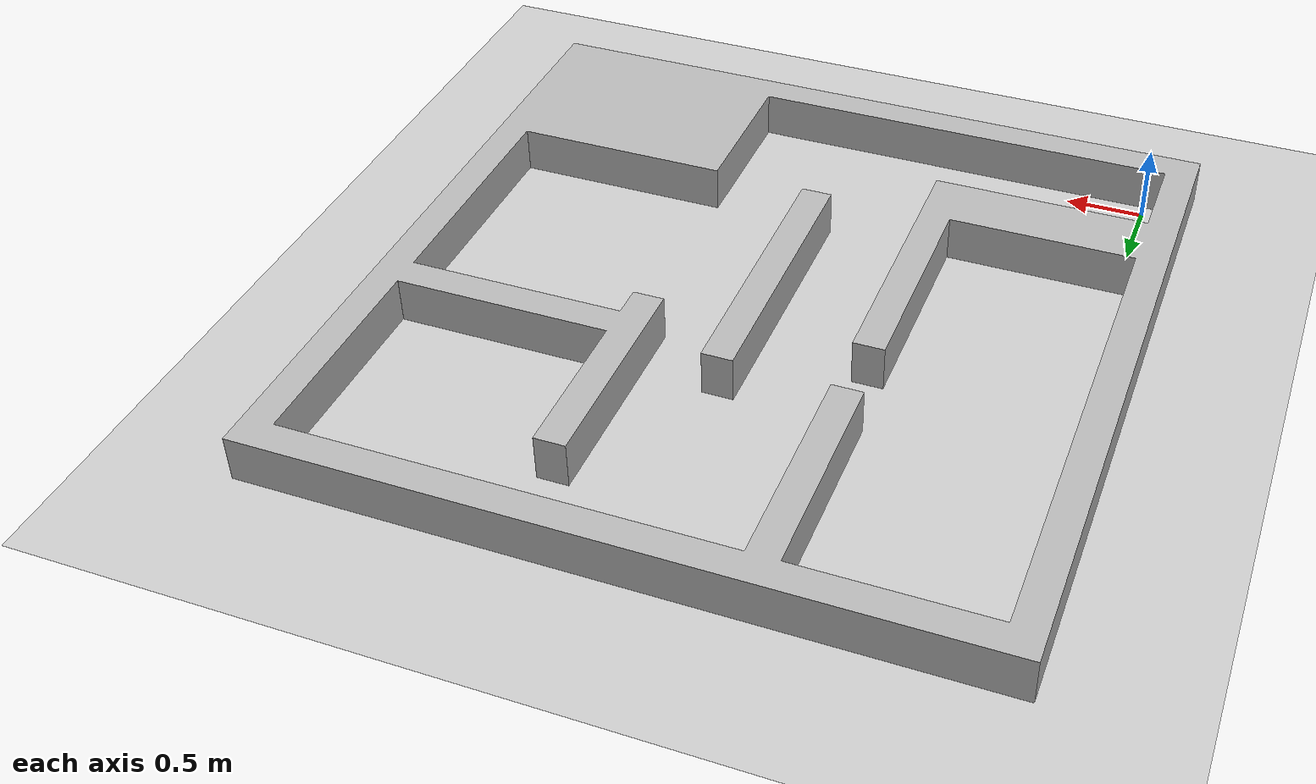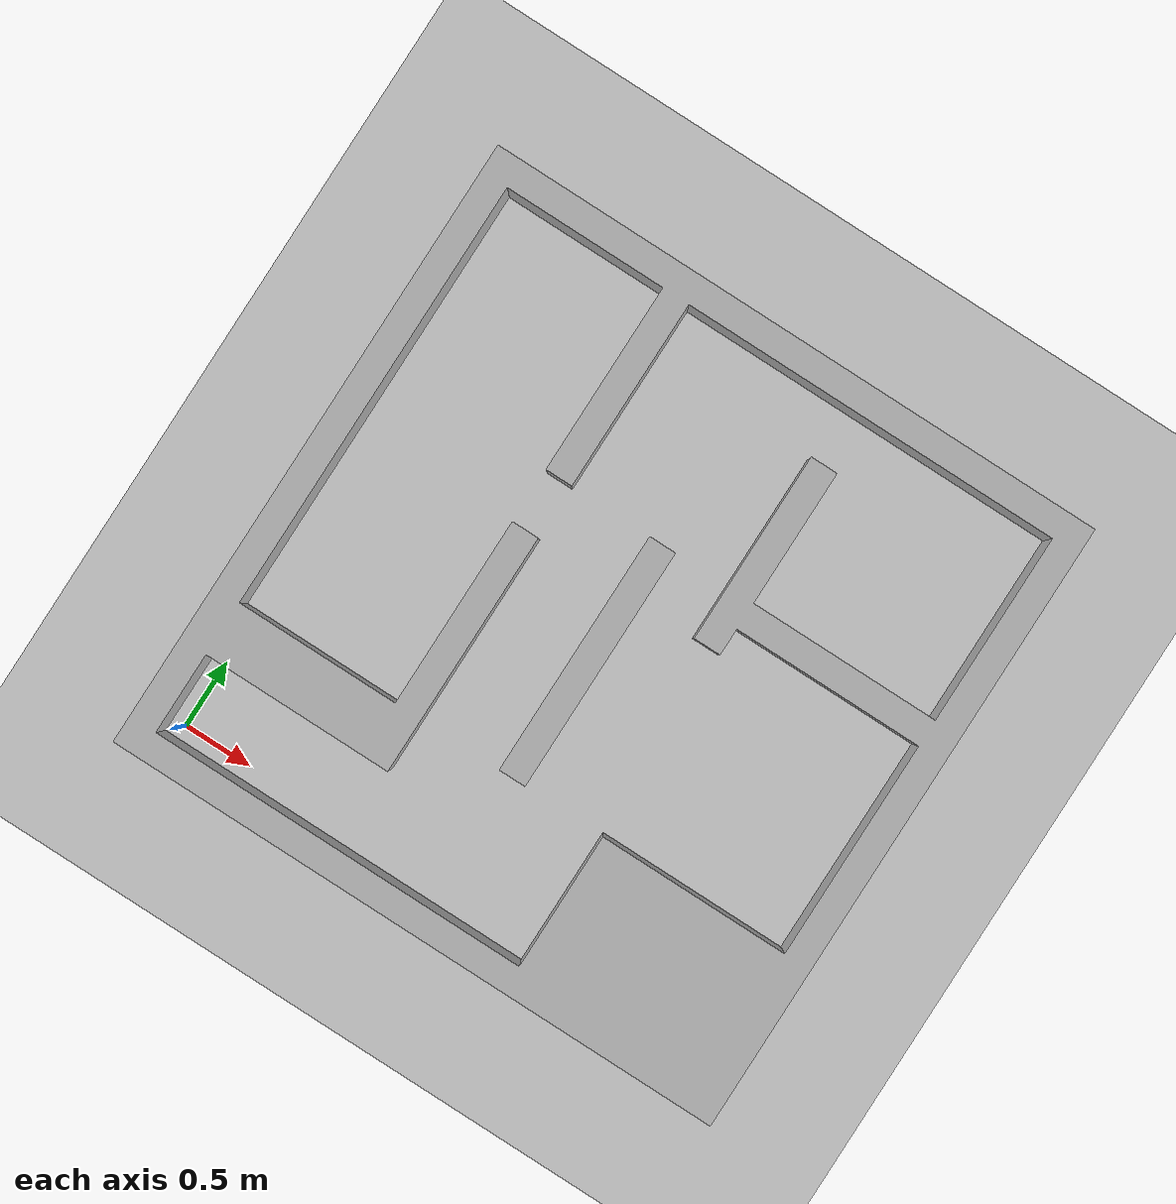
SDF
<sdf version="1.6">
 <world name="default">
  <light name="sun" type="directional">
   <pose>0 0 10 0 -0 0</pose>
   <diffuse>0.8 0.8 0.8 1</diffuse>
   <specular>0.2 0.2 0.2 1</specular>
   <attenuation>
    <range>1000</range>
    <constant>0.9</constant>
    <linear>0.01</linear>
    <quadratic>0.001</quadratic>
   </attenuation>
   <direction>-0.5 0.1 -0.9</direction>
  </light>
  <model name="ground_plane">
   <static>1</static>
   <link name="link">
    <collision name="collision">
     <geometry><plane><normal>0 0 1</normal><size>100 100</size></plane></geometry>
     <surface>
      <contact><collide_bitmask>65535</collide_bitmask></contact>
      <friction><ode><mu>100</mu><mu2>50</mu2></ode></friction>
     </surface>
    </collision>
    <visual name="visual">
     <cast_shadows>0</cast_shadows>
     <geometry><plane><normal>0 0 1</normal><size>100 100</size></plane></geometry>
     <material>
      <script><uri>file://media/materials/scripts/gazebo.material</uri><name>Gazebo/Grey</name></script>
     </material>
    </visual>
   </link>
  </model>
  <gravity>0 0 -9.8</gravity>
  <magnetic_field>6e-06 2.3e-05 -4.2e-05</magnetic_field>
  <atmosphere type="adiabatic"/>
  <physics name="default_physics" default="0" type="ode">
   <max_step_size>0.001</max_step_size>
   <real_time_factor>1</real_time_factor>
   <real_time_update_rate>1000</real_time_update_rate>
  </physics>
  <scene><ambient>0.4 0.4 0.4 1</ambient><background>0.7 0.7 0.7 1</background><shadows>1</shadows></scene>
  <audio><device>default</device></audio>
  <spherical_coordinates>
   <surface_model>EARTH_WGS84</surface_model>
   <latitude_deg>0</latitude_deg>
   <longitude_deg>0</longitude_deg>
   <elevation>0</elevation>
   <heading_deg>0</heading_deg>
  </spherical_coordinates>
  <model name="world_b">
   <link name="world_b">
    <inertial>
     <pose>2.3 -2.3 0 0 -0 0</pose>
     <mass>100.319</mass>
     <inertia><ixx>1000</ixx><ixy>0</ixy><ixz>0</ixz><iyy>1000</iyy><iyz>0</iyz><izz>1000</izz></inertia>
    </inertial>
    <collision name="world_b_collision">
     <pose>0 0 0 1.5708 -0 0</pose>
     <geometry><mesh><scale>10 10 10</scale><uri>model://world_b/meshes/world_b.STL</uri></mesh></geometry>
    </collision>
    <visual name="world_b_visual">
     <pose>0 0 0 1.5708 -0 0</pose>
     <geometry><mesh><scale>10 10 10</scale><uri>model://world_b/meshes/world_b.STL</uri></mesh></geometry>
    </visual>
   </link>
   <pose>-0.3 -0.3 1e-06 -4e-06 1e-06 1.5708</pose>
  </model>
 </world>
</sdf>
